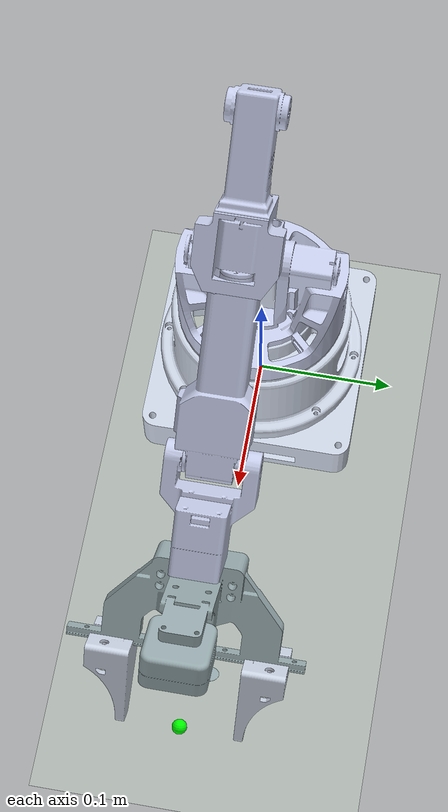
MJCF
<mujoco model="Alicia_D_v5_6_gripper_100mm">
  <compiler angle="radian" meshdir="../../meshes/Alicia_D_v5_6/gripper_100mm/" />
  <statistic center="-0.012496 0.000424702 0.622672" extent="1.93611" meansize="0.179951" />

  <asset>
    <mesh name="base_link" content_type="model/stl" file="base_link.STL" />
    <mesh name="Link1" content_type="model/stl" file="Link1.STL" />
    <mesh name="Link2" content_type="model/stl" file="Link2.STL" />
    <mesh name="Link3" content_type="model/stl" file="Link3.STL" />
    <mesh name="Link4" content_type="model/stl" file="Link4.STL" />
    <mesh name="Link5" content_type="model/stl" file="Link5.STL" />
    <mesh name="Link6" content_type="model/stl" file="Link6.STL" />
    <mesh name="Link7" content_type="model/stl" file="Link7.STL" />
    <mesh name="Link8" content_type="model/stl" file="Link8.STL" />
    <texture builtin="gradient" height="100" rgb1=".4 .5 .6" rgb2="0 0 0" type="skybox" width="100" />
    <texture builtin="checker" height="100" name="texplane" rgb1="1 1 1" rgb2=".8 .9 1" type="2d" width="100" />
    <material name="MatPlane" reflectance="0.5" texrepeat="1 1" texture="texplane" texuniform="true" />
    <material name="white" rgba="1 1 1 1" shininess="0.5" specular="0.1" />
    <material name="black" rgba="0.25 0.25 0.25 1" shininess="0.2" specular="0.05" />
    <material name="invisible" rgba="1 1 1 0" shininess="0" specular="0" />
  </asset>

  <worldbody>
    <geom conaffinity="1" condim="3" contype="1" friction="1 .1 .1" group="2" material="MatPlane" name="floor" pos="0 0 0" rgba="0.8 0.9 0.8 1" size="10 10 0.125" type="plane" />
    <light castshadow="false" cutoff="100" diffuse="1 1 1" dir="-0 0 -1.3" directional="true" exponent="1" pos="0 0 1.3" specular=".1 .1 .1" />
    <body name="base_link" pos="0 0 0" quat="0 0 0 -1">
      <geom type="mesh" contype="0" conaffinity="0" group="1" density="0" rgba="0.807843 0.843137 0.905882 1" mesh="base_link" />
      <geom type="mesh" rgba="0.807843 0.843137 0.905882 1" mesh="base_link" />
      <body name="Link1" pos="0 0 0.1295">
        <inertial pos="-0.000230596 -1.29045e-05 0.00303136" quat="0.494443 0.501274 -0.501534 0.502707" mass="0.195233" diaginertia="0.000339803 0.000258352 0.000149295" />
        <joint name="Joint1" pos="0 0 0" axis="0 0 1" range="-2.16 2.16" actuatorfrcrange="-5 5" />
        <geom type="mesh" contype="0" conaffinity="0" group="1" density="0" rgba="0.796078 0.823529 0.937255 1" mesh="Link1" />
        <geom type="mesh" rgba="0.796078 0.823529 0.937255 1" mesh="Link1" />
        <body name="Link2" pos="0 0 0.04287" quat="0.5 0.5 -0.5 0.5">
          <inertial pos="0.150589 0.00094241 0.000567599" quat="0.700686 -0.0988031 -0.0957288 0.700081" mass="0.207034" diaginertia="0.00020571 0.000128608 0.000122248" />
          <joint name="Joint2" pos="0 0 0" axis="0 0 -1" range="-1.57 1.57" actuatorfrcrange="-5 5" />
          <geom type="mesh" contype="0" conaffinity="0" group="1" density="0" rgba="0.807843 0.843137 0.905882 1" mesh="Link2" />
          <geom type="mesh" rgba="0.807843 0.843137 0.905882 1" mesh="Link2" />
          <body name="Link3" pos="0.223671 0.0225916 -5e-05" quat="0.382683 0 0 -0.92388">
            <inertial pos="-0.00248144 -0.0557863 -0.000269721" quat="0.478686 0.505129 -0.544203 0.468559" mass="0.0845576" diaginertia="8.09971e-05 7.62965e-05 2.81294e-05" />
            <joint name="Joint3" pos="0 0 0" axis="0 0 -1" range="-0.5 2.35619" actuatorfrcrange="-5 5" />
            <geom type="mesh" contype="0" conaffinity="0" group="1" density="0" rgba="0.792157 0.819608 0.933333 1" mesh="Link3" />
            <geom type="mesh" rgba="0.792157 0.819608 0.933333 1" mesh="Link3" />
            <body name="Link4" pos="0.00211 -0.099 -0.0002" quat="0 0 -0.707107 -0.707107">
              <inertial pos="-0.000298366 -0.00060137 -0.065974" quat="0.99997 -0.000404214 0.00701296 0.00329826" mass="0.0653696" diaginertia="7.0311e-05 6.8747e-05 1.68121e-05" />
              <joint name="Joint4" pos="0 0 0" axis="0 0 1" range="-2.7925 2.7925" actuatorfrcrange="-5 5" />
              <geom type="mesh" contype="0" conaffinity="0" group="1" density="0" rgba="0.792157 0.819608 0.933333 1" mesh="Link4" />
              <geom type="mesh" rgba="0.792157 0.819608 0.933333 1" mesh="Link4" />
              <body name="Link5" pos="0 -0.0005 -0.12235" quat="0 0 0.707107 0.707107">
                <inertial pos="-0.0113684 -0.0308687 0.00087045" quat="0.600148 -0.0147585 -0.0142327 0.799626" mass="0.0507639" diaginertia="2.56871e-05 1.81869e-05 1.72553e-05" />
                <joint name="Joint5" pos="0 0 0" axis="0 0 -1" range="-1.57 1.57" actuatorfrcrange="-5 5" />
                <geom type="mesh" contype="0" conaffinity="0" group="1" density="0" rgba="0.792157 0.819608 0.933333 1" mesh="Link5" />
                <geom type="mesh" rgba="0.792157 0.819608 0.933333 1" mesh="Link5" />
                <body name="Link6" pos="-0.00385 -0.0575 0.001" quat="0.707107 0.707107 0 0">
                  <inertial pos="-0.0284286 -0.000164332 0.0356458" quat="0.375269 0.375261 -0.599147 0.599479" mass="0.123299" diaginertia="8.88994e-05 7.97795e-05 3.34532e-05" />
                  <joint name="Joint6" pos="0 0 0" axis="0 0 -1" range="-3.14 3.14" actuatorfrcrange="-5 5" />
                  <geom type="mesh" contype="0" conaffinity="0" group="1" density="0" rgba="0.592157 0.666667 0.682353 1" mesh="Link6" />
                  <geom type="mesh" rgba="0.592157 0.666667 0.682353 1" mesh="Link6" />
                  <geom size="0.005" pos="-0.0002 -0.0003 0.13118" contype="0" conaffinity="0" group="1" density="0" rgba="0 1 0 1" />
                  <body name="Link7" pos="-0.0002 -0.036537 0.13098" quat="0.707105 0.707108 0 0">
                    <inertial pos="-2.97088e-08 -0.0434088 0.0106597" quat="0.581113 0.402878 -0.402868 0.581114" mass="0.0256461" diaginertia="8.50964e-06 6.4683e-06 4.66071e-06" />
                    <joint name="left_finger" pos="0 0 0" axis="0 0 1" type="slide" range="-0.05 0" actuatorfrcrange="-5 5" />
                    <geom type="mesh" contype="0" conaffinity="0" group="1" density="0" rgba="0.807843 0.843137 0.905882 1" mesh="Link7" />
                    <geom type="mesh" rgba="0.807843 0.843137 0.905882 1" mesh="Link7" />
                  </body>
                  <body name="Link8" pos="-0.0002 0.036518 0.13098" quat="0.707105 -0.707108 0 0">
                    <inertial pos="2.97088e-08 0.0434088 0.0106597" quat="0.402868 0.581114 -0.581113 0.402878" mass="0.0256461" diaginertia="8.50964e-06 6.4683e-06 4.66071e-06" />
                    <joint name="right_finger" pos="0 0 0" axis="0 0 -1" type="slide" range="0 0.05" actuatorfrcrange="-5 5" />
                    <geom type="mesh" contype="0" conaffinity="0" group="1" density="0" rgba="0.807843 0.843137 0.905882 1" mesh="Link8" />
                    <geom type="mesh" rgba="0.807843 0.843137 0.905882 1" mesh="Link8" />
                  </body>
                </body>
              </body>
            </body>
          </body>
        </body>
      </body>
    </body>
  </worldbody>

  <contact>
    <exclude body1="base_link" body2="Link1" />
    <exclude body1="Link1" body2="Link2" />
    <exclude body1="Link2" body2="Link3" />
    <exclude body1="Link3" body2="Link4" />
    <exclude body1="Link4" body2="Link5" />
    <exclude body1="Link5" body2="Link6" />
    <exclude body1="Link6" body2="Link7" />
    <exclude body1="Link6" body2="Link8" />
    <exclude body1="Link7" body2="Link8" />
  </contact>

</mujoco>
